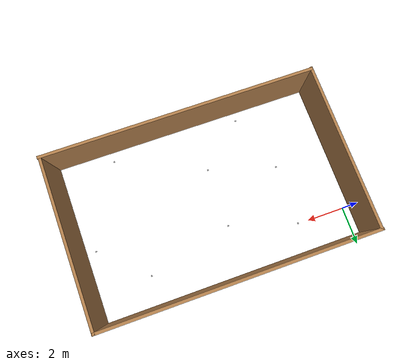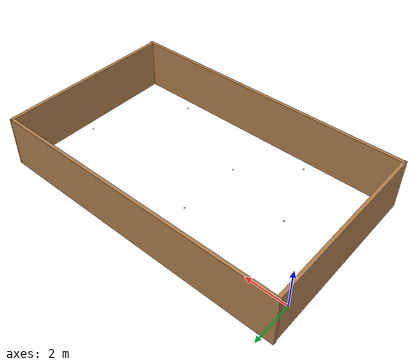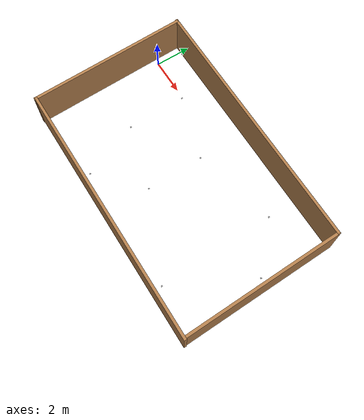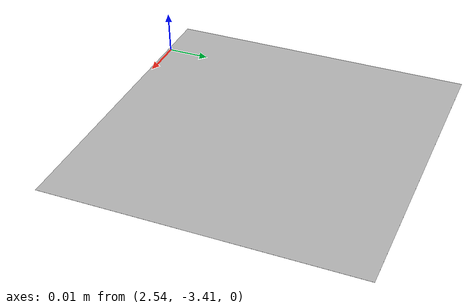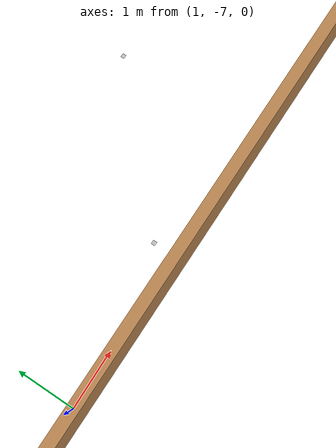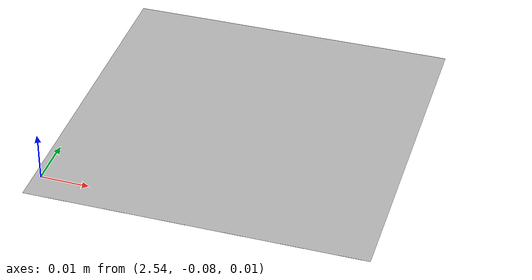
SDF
<sdf version="1.7">
 <world name="default">
  <light name="sun" type="directional">
   <pose>0 0 10 0 -0 0</pose>
   <diffuse>0.8 0.8 0.8 1</diffuse>
   <specular>0.2 0.2 0.2 1</specular>
   <attenuation>
    <range>1000</range>
    <constant>0.9</constant>
    <linear>0.01</linear>
    <quadratic>0.001</quadratic>
   </attenuation>
   <direction>-0.5 0.1 -0.9</direction>
   <spot><inner_angle>0</inner_angle><outer_angle>0</outer_angle><falloff>0</falloff></spot>
  </light>
  <gravity>0 0 -9.8</gravity>
  <magnetic_field>6e-06 2.3e-05 -4.2e-05</magnetic_field>
  <atmosphere type="adiabatic"/>
  <physics type="ode">
   <max_step_size>0.001</max_step_size>
   <real_time_factor>1</real_time_factor>
   <real_time_update_rate>1000</real_time_update_rate>
  </physics>
  <scene><ambient>0.4 0.4 0.4 1</ambient><background>0.7 0.7 0.7 1</background><shadows>1</shadows></scene>
  <spherical_coordinates>
   <surface_model>EARTH_WGS84</surface_model>
   <latitude_deg>0</latitude_deg>
   <longitude_deg>0</longitude_deg>
   <elevation>0</elevation>
   <heading_deg>0</heading_deg>
  </spherical_coordinates>
  <model name="Untitled1_clone_clone">
   <link name="Wall_19">
    <pose>0 0.551652 0 0 -0 0</pose>
    <visual name="Wall_19_Visual">
     <pose>0 0 1.25 0 -0 0</pose>
     <geometry><box><size>14.5 0.15 2.5</size></box></geometry>
     <material>
      <script><uri>file://media/materials/scripts/gazebo.material</uri><name>Gazebo/Wood</name></script>
      <ambient>1 1 1 1</ambient>
      <shader type="pixel"/>
     </material>
     <meta><layer>0</layer></meta>
    </visual>
    <collision name="Wall_19_Collision">
     <pose>0 0 1.25 0 -0 0</pose>
     <geometry><box><size>14.5 0.15 2.5</size></box></geometry>
     <surface>
      <friction>
       <ode><mu>1</mu><mu2>1</mu2><fdir1>0 0 0</fdir1><slip1>0</slip1><slip2>0</slip2></ode>
       <torsional>
        <coefficient>1</coefficient>
        <patch_radius>0</patch_radius>
        <surface_radius>0</surface_radius>
        <use_patch_radius>1</use_patch_radius>
        <ode><slip>0</slip></ode>
       </torsional>
      </friction>
      <bounce><restitution_coefficient>0</restitution_coefficient><threshold>1e+06</threshold></bounce>
      <contact>
       <collide_without_contact>0</collide_without_contact>
       <collide_without_contact_bitmask>1</collide_without_contact_bitmask>
       <collide_bitmask>1</collide_bitmask>
       <ode>
        <soft_cfm>0</soft_cfm>
        <soft_erp>0.2</soft_erp>
        <kp>1e+13</kp>
        <kd>1</kd>
        <max_vel>0.01</max_vel>
        <min_depth>0</min_depth>
       </ode>
       <bullet>
        <split_impulse>1</split_impulse>
        <split_impulse_penetration_threshold>-0.01</split_impulse_penetration_threshold>
        <soft_cfm>0</soft_cfm>
        <soft_erp>0.2</soft_erp>
        <kp>1e+13</kp>
        <kd>1</kd>
       </bullet>
      </contact>
     </surface>
    </collision>
   </link>
   <link name="Wall_19_clone">
    <pose>7.2568 -3.77161 0 0 0 -1.55538</pose>
    <inertial>
     <inertia><ixx>0</ixx><ixy>0</ixy><ixz>0</ixz><iyy>0</iyy><iyz>0</iyz><izz>0</izz></inertia>
     <mass>0</mass>
    </inertial>
    <visual name="Wall_19_Visual">
     <pose>0 0 1.25 0 -0 0</pose>
     <geometry><box><size>8.85115 0.15 2.5</size></box></geometry>
     <material>
      <script><uri>file://media/materials/scripts/gazebo.material</uri><name>Gazebo/Wood</name></script>
      <ambient>1 1 1 1</ambient>
      <shader type="pixel"/>
     </material>
     <meta><layer>0</layer></meta>
    </visual>
    <collision name="Wall_19_Collision">
     <pose>0 0 1.25 0 -0 0</pose>
     <geometry><box><size>8.85115 0.15 2.5</size></box></geometry>
     <surface>
      <friction>
       <ode><mu>1</mu><mu2>1</mu2><fdir1>0 0 0</fdir1><slip1>0</slip1><slip2>0</slip2></ode>
       <torsional>
        <coefficient>1</coefficient>
        <patch_radius>0</patch_radius>
        <surface_radius>0</surface_radius>
        <use_patch_radius>1</use_patch_radius>
        <ode><slip>0</slip></ode>
       </torsional>
      </friction>
      <bounce><restitution_coefficient>0</restitution_coefficient><threshold>1e+06</threshold></bounce>
      <contact>
       <collide_without_contact>0</collide_without_contact>
       <collide_without_contact_bitmask>1</collide_without_contact_bitmask>
       <collide_bitmask>1</collide_bitmask>
       <ode>
        <soft_cfm>0</soft_cfm>
        <soft_erp>0.2</soft_erp>
        <kp>1e+13</kp>
        <kd>1</kd>
        <max_vel>0.01</max_vel>
        <min_depth>0</min_depth>
       </ode>
       <bullet>
        <split_impulse>1</split_impulse>
        <split_impulse_penetration_threshold>-0.01</split_impulse_penetration_threshold>
        <soft_cfm>0</soft_cfm>
        <soft_erp>0.2</soft_erp>
        <kp>1e+13</kp>
        <kd>1</kd>
       </bullet>
      </contact>
     </surface>
    </collision>
   </link>
   <static>1</static>
   <pose>6.83005 -6.63981 0 0 -0 3.1333</pose>
  </model>
  <model name="Untitled1_clone">
   <link name="Wall_19">
    <pose>0.025137 0.618286 0 0 -0 0</pose>
    <inertial>
     <inertia><ixx>0</ixx><ixy>0</ixy><ixz>0</ixz><iyy>0</iyy><iyz>0</iyz><izz>0</izz></inertia>
     <mass>0</mass>
    </inertial>
    <visual name="Wall_19_Visual">
     <pose>0 0 1.25 0 -0 0</pose>
     <geometry><box><size>14.4131 0.15 2.5</size></box></geometry>
     <material>
      <script><uri>file://media/materials/scripts/gazebo.material</uri><name>Gazebo/Wood</name></script>
      <ambient>1 1 1 1</ambient>
      <shader type="pixel"/>
     </material>
     <meta><layer>0</layer></meta>
    </visual>
    <collision name="Wall_19_Collision">
     <pose>0 0 1.25 0 -0 0</pose>
     <geometry><box><size>14.4131 0.15 2.5</size></box></geometry>
     <surface>
      <friction>
       <ode><mu>1</mu><mu2>1</mu2><fdir1>0 0 0</fdir1><slip1>0</slip1><slip2>0</slip2></ode>
       <torsional>
        <coefficient>1</coefficient>
        <patch_radius>0</patch_radius>
        <surface_radius>0</surface_radius>
        <use_patch_radius>1</use_patch_radius>
        <ode><slip>0</slip></ode>
       </torsional>
      </friction>
      <bounce><restitution_coefficient>0</restitution_coefficient><threshold>1e+06</threshold></bounce>
      <contact>
       <collide_without_contact>0</collide_without_contact>
       <collide_without_contact_bitmask>1</collide_without_contact_bitmask>
       <collide_bitmask>1</collide_bitmask>
       <ode>
        <soft_cfm>0</soft_cfm>
        <soft_erp>0.2</soft_erp>
        <kp>1e+13</kp>
        <kd>1</kd>
        <max_vel>0.01</max_vel>
        <min_depth>0</min_depth>
       </ode>
       <bullet>
        <split_impulse>1</split_impulse>
        <split_impulse_penetration_threshold>-0.01</split_impulse_penetration_threshold>
        <soft_cfm>0</soft_cfm>
        <soft_erp>0.2</soft_erp>
        <kp>1e+13</kp>
        <kd>1</kd>
       </bullet>
      </contact>
     </surface>
    </collision>
   </link>
   <link name="Wall_19_clone">
    <pose>7.24316 -3.73234 0 0 0 -1.55538</pose>
    <inertial>
     <inertia><ixx>0</ixx><ixy>0</ixy><ixz>0</ixz><iyy>0</iyy><iyz>0</iyz><izz>0</izz></inertia>
     <mass>0</mass>
    </inertial>
    <visual name="Wall_19_Visual">
     <pose>0 0 1.25 0 -0 0</pose>
     <geometry><box><size>8.85115 0.15 2.5</size></box></geometry>
     <material>
      <script><uri>file://media/materials/scripts/gazebo.material</uri><name>Gazebo/Wood</name></script>
      <ambient>1 1 1 1</ambient>
      <shader type="pixel"/>
     </material>
     <meta><layer>0</layer></meta>
    </visual>
    <collision name="Wall_19_Collision">
     <pose>0 0 1.25 0 -0 0</pose>
     <geometry><box><size>8.85115 0.15 2.5</size></box></geometry>
     <surface>
      <friction>
       <ode><mu>1</mu><mu2>1</mu2><fdir1>0 0 0</fdir1><slip1>0</slip1><slip2>0</slip2></ode>
       <torsional>
        <coefficient>1</coefficient>
        <patch_radius>0</patch_radius>
        <surface_radius>0</surface_radius>
        <use_patch_radius>1</use_patch_radius>
        <ode><slip>0</slip></ode>
       </torsional>
      </friction>
      <bounce><restitution_coefficient>0</restitution_coefficient><threshold>1e+06</threshold></bounce>
      <contact>
       <collide_without_contact>0</collide_without_contact>
       <collide_without_contact_bitmask>1</collide_without_contact_bitmask>
       <collide_bitmask>1</collide_bitmask>
       <ode>
        <soft_cfm>0</soft_cfm>
        <soft_erp>0.2</soft_erp>
        <kp>1e+13</kp>
        <kd>1</kd>
        <max_vel>0.01</max_vel>
        <min_depth>0</min_depth>
       </ode>
       <bullet>
        <split_impulse>1</split_impulse>
        <split_impulse_penetration_threshold>-0.01</split_impulse_penetration_threshold>
        <soft_cfm>0</soft_cfm>
        <soft_erp>0.2</soft_erp>
        <kp>1e+13</kp>
        <kd>1</kd>
       </bullet>
      </contact>
     </surface>
    </collision>
   </link>
   <static>1</static>
   <pose>6.64843 0.956294 0 0 -0 0</pose>
  </model>
  <model name="qr_shelf_A">
   <static>1</static>
   <link name="qr_shelf_A_link">
    <pose>0 0 0.001 0 -0 1.5708</pose>
    <visual name="visual_qr_shelf_A">
     <cast_shadows>0</cast_shadows>
     <geometry><box><size>0.07 0.07 1e-05</size></box></geometry>
     <material>
      <script>
       <uri>model://qr_shelf_A/materials/scripts</uri>
       <uri>model://qr_shelf_A/materials/textures</uri>
       <name>qr_shelf_A/qr_shelf_A</name>
      </script>
     </material>
    </visual>
   </link>
   <pose>2.57149 -0.046545 0.005445 0 -0 0</pose>
  </model>
  <model name="qr_shelf_B">
   <static>1</static>
   <link name="qr_shelf_B_link">
    <pose>0 0 0.001 0 -0 1.5708</pose>
    <visual name="visual_qr_shelf_B">
     <cast_shadows>0</cast_shadows>
     <geometry><box><size>0.07 0.07 1e-05</size></box></geometry>
     <material>
      <script>
       <uri>model://qr_shelf_B/materials/scripts</uri>
       <uri>model://qr_shelf_B/materials/textures</uri>
       <name>qr_shelf_B/qr_shelf_B</name>
      </script>
     </material>
    </visual>
   </link>
   <pose>2.57149 -3.37161 0.004 0 -0 0</pose>
  </model>
  <model name="qr_shelf_C">
   <static>1</static>
   <link name="qr_shelf_C_link">
    <pose>0 0 0.001 0 -0 1.5708</pose>
    <visual name="visual_qr_shelf_C">
     <cast_shadows>0</cast_shadows>
     <geometry><box><size>0.07 0.07 1e-05</size></box></geometry>
     <material>
      <script>
       <uri>model://qr_shelf_C/materials/scripts</uri>
       <uri>model://qr_shelf_C/materials/textures</uri>
       <name>qr_shelf_C/qr_shelf_C</name>
      </script>
     </material>
    </visual>
   </link>
   <pose>6.18288 -1.18212 0.011394 0 -0 0</pose>
  </model>
  <model name="qr_shelf_D">
   <static>1</static>
   <link name="qr_shelf_D_link">
    <pose>0 0 0.001 0 -0 1.5708</pose>
    <visual name="visual_qr_shelf_D">
     <cast_shadows>0</cast_shadows>
     <geometry><box><size>0.07 0.07 1e-05</size></box></geometry>
     <material>
      <script>
       <uri>model://qr_shelf_D/materials/scripts</uri>
       <uri>model://qr_shelf_D/materials/textures</uri>
       <name>qr_shelf_D/qr_shelf_D</name>
      </script>
     </material>
    </visual>
   </link>
   <pose>6.18288 -4.45114 0.015664 0 -0 0</pose>
  </model>
  <model name="qr_zone_A1">
   <static>1</static>
   <link name="qr_zone_A1_link">
    <pose>0 0 0.001 0 -0 1.5708</pose>
    <visual name="visual_qr_zone_A1">
     <cast_shadows>0</cast_shadows>
     <geometry><box><size>0.07 0.07 1e-05</size></box></geometry>
     <material>
      <script>
       <uri>model://qr_zone_A1/materials/scripts</uri>
       <uri>model://qr_zone_A1/materials/textures</uri>
       <name>qr_zone_A1/qr_zone_A1</name>
      </script>
     </material>
    </visual>
   </link>
   <pose>10.9016 -0.035744 0.031329 0 -0 0</pose>
  </model>
  <model name="qr_zone_B1">
   <static>1</static>
   <link name="qr_zone_B1_link">
    <pose>0 0 0.001 0 -0 1.5708</pose>
    <visual name="visual_qr_zone_B1">
     <cast_shadows>0</cast_shadows>
     <geometry><box><size>0.07 0.07 1e-05</size></box></geometry>
     <material>
      <script>
       <uri>model://qr_zone_B1/materials/scripts</uri>
       <uri>model://qr_zone_B1/materials/textures</uri>
       <name>qr_zone_B1/qr_zone_B1</name>
      </script>
     </material>
    </visual>
   </link>
   <pose>13.3003 -2.23119 0.009997 0 -0 0</pose>
  </model>
  <model name="qr_zone_c1">
   <static>1</static>
   <link name="qr_zone_c1_link">
    <pose>0 0 0.001 0 -0 1.5708</pose>
    <visual name="visual_qr_zone_c1">
     <cast_shadows>0</cast_shadows>
     <geometry><box><size>0.07 0.07 1e-05</size></box></geometry>
     <material>
      <script>
       <uri>model://qr_zone_c1/materials/scripts</uri>
       <uri>model://qr_zone_c1/materials/textures</uri>
       <name>qr_zone_c1/qr_zone_c1</name>
      </script>
     </material>
    </visual>
   </link>
   <pose>10.9557 -6.63678 0.014268 0 -0 0</pose>
  </model>
  <model name="qr_zone_D1">
   <static>1</static>
   <link name="qr_zone_D1_link">
    <pose>0 0 0.001 0 -0 1.5708</pose>
    <visual name="visual_qr_zone_D1">
     <cast_shadows>0</cast_shadows>
     <geometry><box><size>0.07 0.07 1e-05</size></box></geometry>
     <material>
      <script>
       <uri>model://qr_zone_D1/materials/scripts</uri>
       <uri>model://qr_zone_D1/materials/textures</uri>
       <name>qr_zone_D1/qr_zone_D1</name>
      </script>
     </material>
    </visual>
   </link>
   <pose>3.76494 -6.63678 0.006063 0 -0 0</pose>
  </model>
 </world>
</sdf>
